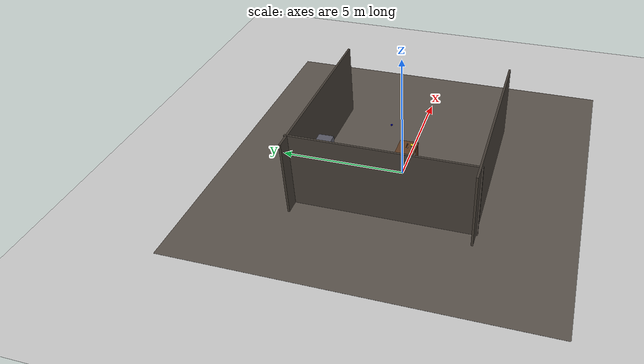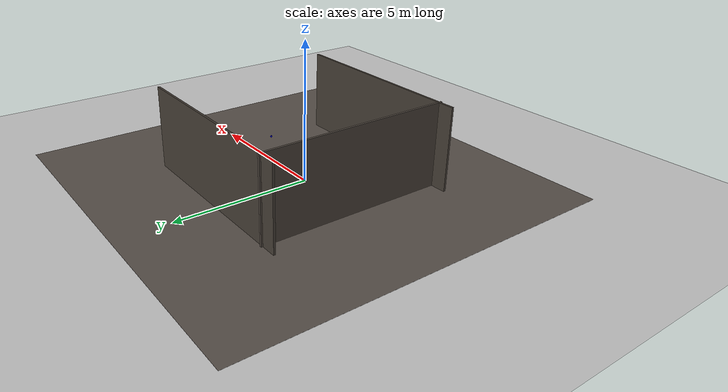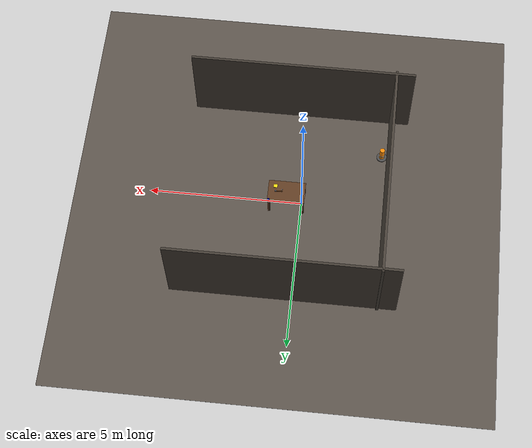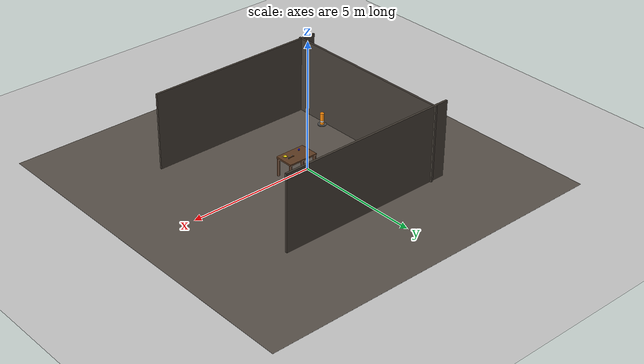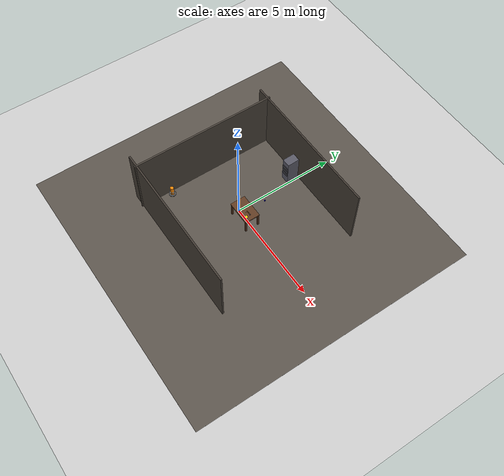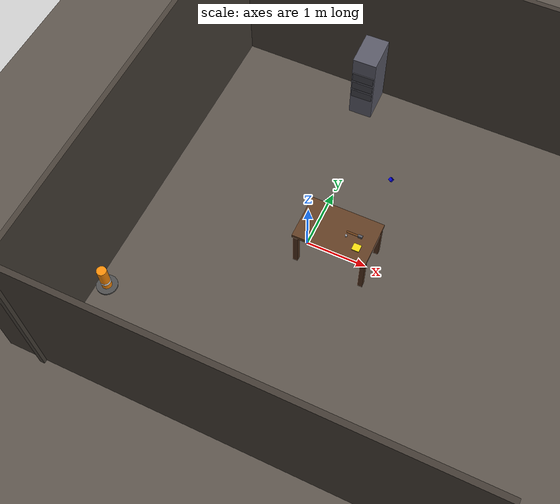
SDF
<sdf version="1.6">
 <world name="workshop">
  <include><uri>model://sun</uri></include>
  <include><uri>model://ground_plane</uri></include>
  <plugin name="model_attachment" filename="libboeing_gazebo_model_attachment_plugin_lib.so"/>
  <plugin name="gazebo_ros_state" filename="libgazebo_ros_state.so">
   <ros><namespace>/gazebo</namespace></ros>
   <update_rate>10.0</update_rate>
  </plugin>
  <physics name="default" type="ode">
   <max_step_size>0.001</max_step_size>
   <real_time_factor>1.0</real_time_factor>
   <ode><solver><type>quick</type><iters>50</iters><sor>1.3</sor></solver></ode>
  </physics>
  <model name="floor">
   <static>true</static>
   <pose>0.5 0 0.001 0 0 0</pose>
   <link name="s">
    <visual name="v">
     <geometry><box><size>14 14 0.002</size></box></geometry>
     <material><ambient>0.30 0.28 0.26 1</ambient><diffuse>0.36 0.33 0.30 1</diffuse></material>
    </visual>
   </link>
  </model>
  <model name="table">
   <static>true</static>
   <pose>0.5 0.0 0.0 0 0 0</pose>
   <link name="top">
    <pose>0 0 0.74 0 0 0</pose>
    <collision name="col">
     <geometry><box><size>1.20 0.75 0.06</size></box></geometry>
     <surface><friction><ode><mu>1.0</mu><mu2>1.0</mu2></ode></friction></surface>
    </collision>
    <visual name="vis">
     <geometry><box><size>1.20 0.75 0.06</size></box></geometry>
     <material>
      <ambient>0.28 0.18 0.10 1</ambient>
      <diffuse>0.38 0.24 0.14 1</diffuse>
      <specular>0.12 0.08 0.04 1</specular>
     </material>
    </visual>
   </link>
   <link name="lfl">
    <pose>0.55  0.32 0.37 0 0 0</pose>
    <collision name="c"><geometry><box><size>0.08 0.08 0.74</size></box></geometry></collision>
    <visual name="v">
     <geometry><box><size>0.08 0.08 0.74</size></box></geometry>
     <material><ambient>0.22 0.14 0.08 1</ambient><diffuse>0.30 0.18 0.10 1</diffuse></material>
    </visual>
   </link>
   <link name="lfr">
    <pose>0.55 -0.32 0.37 0 0 0</pose>
    <collision name="c"><geometry><box><size>0.08 0.08 0.74</size></box></geometry></collision>
    <visual name="v">
     <geometry><box><size>0.08 0.08 0.74</size></box></geometry>
     <material><ambient>0.22 0.14 0.08 1</ambient><diffuse>0.30 0.18 0.10 1</diffuse></material>
    </visual>
   </link>
   <link name="lbl">
    <pose>-0.55  0.32 0.37 0 0 0</pose>
    <collision name="c"><geometry><box><size>0.08 0.08 0.74</size></box></geometry></collision>
    <visual name="v">
     <geometry><box><size>0.08 0.08 0.74</size></box></geometry>
     <material><ambient>0.22 0.14 0.08 1</ambient><diffuse>0.30 0.18 0.10 1</diffuse></material>
    </visual>
   </link>
   <link name="lbr">
    <pose>-0.55 -0.32 0.37 0 0 0</pose>
    <collision name="c"><geometry><box><size>0.08 0.08 0.74</size></box></geometry></collision>
    <visual name="v">
     <geometry><box><size>0.08 0.08 0.74</size></box></geometry>
     <material><ambient>0.22 0.14 0.08 1</ambient><diffuse>0.30 0.18 0.10 1</diffuse></material>
    </visual>
   </link>
  </model>
  <model name="room">
   <static>true</static>
   <pose>0.5 0 0 0 0 0</pose>
   <link name="back">
    <pose>-3.2 0 1.5 0 0 0</pose>
    <collision name="c"><geometry><box><size>0.08 7.0 3.0</size></box></geometry></collision>
    <visual name="v">
     <geometry><box><size>0.08 7.0 3.0</size></box></geometry>
     <material><ambient>0.22 0.20 0.18 1</ambient><diffuse>0.28 0.25 0.22 1</diffuse></material>
    </visual>
   </link>
   <link name="left">
    <pose>-0.2  3.4 1.5 0 0 0</pose>
    <collision name="c"><geometry><box><size>7.2 0.08 3.0</size></box></geometry></collision>
    <visual name="v">
     <geometry><box><size>7.2 0.08 3.0</size></box></geometry>
     <material><ambient>0.20 0.18 0.16 1</ambient><diffuse>0.26 0.23 0.20 1</diffuse></material>
    </visual>
   </link>
   <link name="right">
    <pose>-0.2 -3.4 1.5 0 0 0</pose>
    <collision name="c"><geometry><box><size>7.2 0.08 3.0</size></box></geometry></collision>
    <visual name="v">
     <geometry><box><size>7.2 0.08 3.0</size></box></geometry>
     <material><ambient>0.20 0.18 0.16 1</ambient><diffuse>0.26 0.23 0.20 1</diffuse></material>
    </visual>
   </link>
  </model>
  <model name="cabinet">
   <static>true</static>
   <pose>-0.2669 3.0451 0 0 0 -1.5469</pose>
   <link name="b">
    <pose>0 0 0.65 0 0 0</pose>
    <collision name="c"><geometry><box><size>0.60 0.40 1.30</size></box></geometry></collision>
    <visual name="v">
     <geometry><box><size>0.60 0.40 1.30</size></box></geometry>
     <material>
      <ambient>0.28 0.28 0.32 1</ambient>
      <diffuse>0.35 0.35 0.40 1</diffuse>
      <specular>0.5 0.5 0.5 1</specular>
     </material>
    </visual>
   </link>
   <link name="d1">
    <pose>0.31 0 0.92 0 0 0</pose>
    <visual name="v">
     <geometry><box><size>0.02 0.36 0.16</size></box></geometry>
     <material><ambient>0.20 0.20 0.23 1</ambient><diffuse>0.25 0.25 0.28 1</diffuse></material>
    </visual>
   </link>
   <link name="d2">
    <pose>0.31 0 0.72 0 0 0</pose>
    <visual name="v">
     <geometry><box><size>0.02 0.36 0.16</size></box></geometry>
     <material><ambient>0.20 0.20 0.23 1</ambient><diffuse>0.25 0.25 0.28 1</diffuse></material>
    </visual>
   </link>
   <link name="d3">
    <pose>0.31 0 0.52 0 0 0</pose>
    <visual name="v">
     <geometry><box><size>0.02 0.36 0.16</size></box></geometry>
     <material><ambient>0.20 0.20 0.23 1</ambient><diffuse>0.25 0.25 0.28 1</diffuse></material>
    </visual>
   </link>
  </model>
  <model name="hammer">
   <pose>0.75 0.0171 0.7954 0 0 0</pose>
   <link name="link">
    <inertial>
     <mass>0.45</mass>
     <inertia><ixx>3.4e-4</ixx><ixy>0</ixy><ixz>0</ixz><iyy>3.5e-3</iyy><iyz>0</iyz><izz>3.5e-3</izz></inertia>
    </inertial>
    <collision name="col">
     <geometry><box><size>0.300 0.040 0.050</size></box></geometry>
     <surface><friction><ode><mu>0.9</mu><mu2>0.9</mu2></ode></friction></surface>
    </collision>
    <visual name="handle">
     <pose>0 0 0 0 1.5708 0</pose>
     <geometry><cylinder><radius>0.015</radius><length>0.240</length></cylinder></geometry>
     <material><ambient>0.35 0.20 0.08 1</ambient><diffuse>0.45 0.26 0.10 1</diffuse></material>
    </visual>
    <visual name="head">
     <pose>0.10 0 0 0 0 0</pose>
     <geometry><box><size>0.070 0.040 0.040</size></box></geometry>
     <material>
      <ambient>0.25 0.25 0.28 1</ambient>
      <diffuse>0.35 0.35 0.38 1</diffuse>
      <specular>0.6 0.6 0.6 1</specular>
     </material>
    </visual>
   </link>
  </model>
  <model name="target_tray">
   <static>true</static>
   <pose>0.87 -0.1717 0.780 0 0 0</pose>
   <link name="link">
    <collision name="col">
     <geometry><box><size>0.120 0.120 0.020</size></box></geometry>
     <surface><friction><ode><mu>0.9</mu><mu2>0.9</mu2></ode></friction></surface>
    </collision>
    <visual name="vis">
     <geometry><box><size>0.120 0.120 0.020</size></box></geometry>
     <material><ambient>0.90 0.75 0.05 1</ambient><diffuse>0.95 0.85 0.06 1</diffuse></material>
    </visual>
   </link>
  </model>
  <model name="overview_camera">
   <static>true</static>
   <pose>1.0 0.7 1.5 0 0.68 -2.19</pose>
   <link name="camera_link">
    <visual name="vis">
     <geometry><box><size>0.05 0.05 0.05</size></box></geometry>
     <material><ambient>0 0 0.8 1</ambient><diffuse>0 0 0.8 1</diffuse></material>
    </visual>
    <sensor name="overview_camera" type="camera">
     <update_rate>10</update_rate>
     <camera>
      <horizontal_fov>1.047</horizontal_fov>
      <image><width>1280</width><height>960</height><format>R8G8B8</format></image>
      <clip><near>0.05</near><far>5.0</far></clip>
     </camera>
     <plugin name="overview_camera_plugin" filename="libgazebo_ros_camera.so">
      <ros>
       <remapping>~/image_raw:=/overview_camera/image_raw</remapping>
       <remapping>~/camera_info:=/overview_camera/camera_info</remapping>
      </ros>
      <camera_name>overview_camera</camera_name>
      <frame_name>overview_camera_link</frame_name>
     </plugin>
    </sensor>
   </link>
  </model>
  <model name="safety_cone">
   <static>true</static>
   <pose>-2.5 -2.0 0 0 0 0</pose>
   <link name="base">
    <pose>0 0 0.015 0 0 0</pose>
    <collision name="c">
     <geometry><cylinder><radius>0.17</radius><length>0.030</length></cylinder></geometry>
    </collision>
    <visual name="v">
     <geometry><cylinder><radius>0.17</radius><length>0.030</length></cylinder></geometry>
     <material><ambient>0.25 0.25 0.25 1</ambient><diffuse>0.30 0.30 0.30 1</diffuse></material>
    </visual>
   </link>
   <link name="body">
    <pose>0 0 0.255 0 0 0</pose>
    <collision name="c">
     <geometry><cylinder><radius>0.08</radius><length>0.45</length></cylinder></geometry>
    </collision>
    <visual name="v">
     <geometry><cylinder><radius>0.08</radius><length>0.45</length></cylinder></geometry>
     <material><ambient>0.95 0.45 0.02 1</ambient><diffuse>1.0 0.55 0.03 1</diffuse></material>
    </visual>
   </link>
   <link name="stripe">
    <pose>0 0 0.16 0 0 0</pose>
    <visual name="v">
     <geometry><cylinder><radius>0.082</radius><length>0.05</length></cylinder></geometry>
     <material><ambient>0.95 0.95 0.95 1</ambient><diffuse>1.0 1.0 1.0 1</diffuse></material>
    </visual>
   </link>
  </model>
  <model name="hex_bolt">
   <static>false</static>
   <pose>0.65 -0.05 0.7815 0 0 0.785</pose>
   <link name="link">
    <inertial>
     <mass>0.08</mass>
     <inertia><ixx>1e-5</ixx><ixy>0</ixy><ixz>0</ixz><iyy>1e-5</iyy><iyz>0</iyz><izz>1e-5</izz></inertia>
    </inertial>
    <collision name="col">
     <geometry><cylinder><radius>0.018</radius><length>0.035</length></cylinder></geometry>
     <surface><friction><ode><mu>0.8</mu><mu2>0.8</mu2></ode></friction></surface>
    </collision>
    <visual name="vis">
     <geometry><cylinder><radius>0.018</radius><length>0.035</length></cylinder></geometry>
     <material>
      <ambient>0.50 0.50 0.52 1</ambient>
      <diffuse>0.65 0.65 0.68 1</diffuse>
      <specular>0.8 0.8 0.8 1</specular>
     </material>
    </visual>
   </link>
  </model>
 </world>
</sdf>
